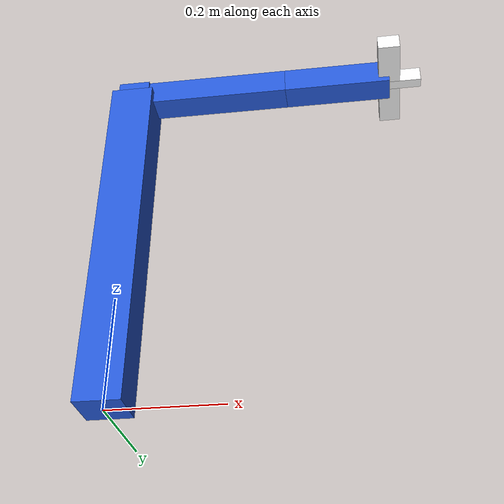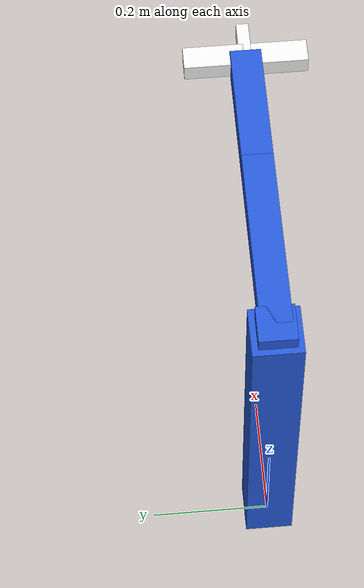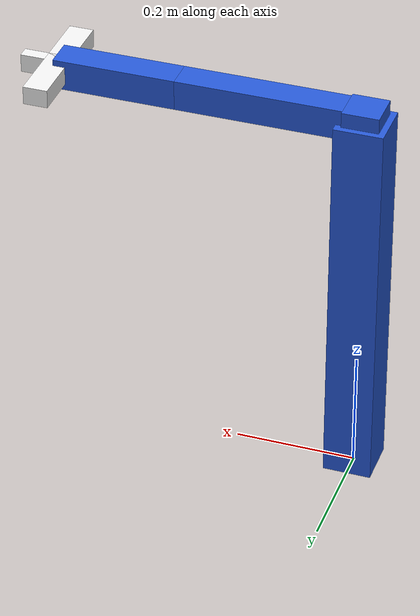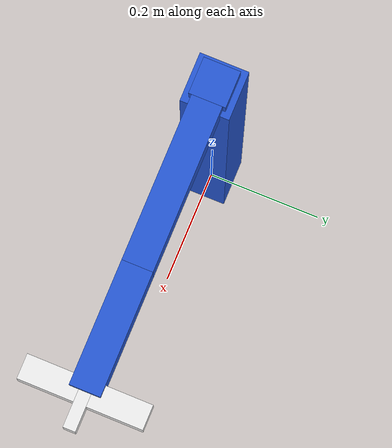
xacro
<?xml version="1.0"?>
<robot xmlns:xacro="http://www.ros.org/wiki/xacro" name="scara_arm_standalone">

  <xacro:include filename="$(find arm_description)/urdf/arm.xacro"/>

  <!-- goc the gioi de RViz co fixed frame -->
  <link name="arm_world"/>

  <!-- goi macro tay, gan vao arm_world (test rieng) -->
  <xacro:scara_arm parent="arm_world" xyz="0 0 0" rpy="0 0 0"/>

</robot>

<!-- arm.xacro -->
<robot xmlns:xacro="http://www.ros.org/wiki/xacro" name="scara_arm">

  <!-- ===== Thong so tay (so do that cua Duy) ===== -->
  <xacro:property name="arm_mount_z"  value="0.65"/>
  <xacro:property name="link1_len"    value="0.30"/>
  <xacro:property name="link2_len"    value="0.20"/>
  <xacro:property name="link_thick"   value="0.05"/>
  <xacro:property name="z_travel"     value="0.40"/>
  <xacro:property name="arm_mass"     value="0.5"/>
  <xacro:property name="grip_open"    value="0.20"/>
  <xacro:property name="finger_len"   value="0.06"/>
  <xacro:property name="finger_thick" value="0.02"/>

  <xacro:macro name="arm_box_inertia" params="m x y z">
    <inertial>
      <mass value="${m}"/>
      <inertia ixx="${(m/12.0)*(y*y+z*z)}" ixy="0.0" ixz="0.0"
               iyy="${(m/12.0)*(x*x+z*z)}" iyz="0.0"
               izz="${(m/12.0)*(x*x+y*y)}"/>
    </inertial>
  </xacro:macro>

  <material name="arm_blue"><color rgba="0.15 0.35 0.85 1.0"/></material>
  <material name="arm_white"><color rgba="0.95 0.95 0.95 1.0"/></material>

  <xacro:macro name="scara_arm" params="parent xyz:='0 0 0' rpy:='0 0 0'">

    <link name="arm_base_link">
      <visual>
        <origin xyz="0 0 ${arm_mount_z/2}" rpy="0 0 0"/>
        <geometry><box size="0.08 0.08 ${arm_mount_z}"/></geometry>
        <material name="arm_blue"/>
      </visual>
      <collision>
        <origin xyz="0 0 ${arm_mount_z/2}" rpy="0 0 0"/>
        <geometry><box size="0.08 0.08 ${arm_mount_z}"/></geometry>
      </collision>
      <xacro:arm_box_inertia m="${arm_mass}" x="0.08" y="0.08" z="${arm_mount_z}"/>
    </link>

    <joint name="arm_mount_joint" type="fixed">
      <parent link="${parent}"/>
      <child link="arm_base_link"/>
      <origin xyz="${xyz}" rpy="${rpy}"/>
    </joint>

    <link name="arm_z_link">
      <visual>
        <origin xyz="0 0 0" rpy="0 0 0"/>
        <geometry><box size="0.06 0.06 0.05"/></geometry>
        <material name="arm_blue"/>
      </visual>
      <xacro:arm_box_inertia m="0.2" x="0.06" y="0.06" z="0.05"/>
    </link>
    <joint name="J_z" type="prismatic">
      <parent link="arm_base_link"/>
      <child link="arm_z_link"/>
      <origin xyz="0 0 ${arm_mount_z}" rpy="0 0 0"/>
      <axis xyz="0 0 1"/>
      <limit lower="${-z_travel}" upper="0.0" effort="50.0" velocity="0.1"/>
    </joint>

    <link name="arm_link1">
      <visual>
        <origin xyz="${link1_len/2} 0 0" rpy="0 0 0"/>
        <geometry><box size="${link1_len} ${link_thick} ${link_thick}"/></geometry>
        <material name="arm_blue"/>
      </visual>
      <xacro:arm_box_inertia m="0.3" x="${link1_len}" y="${link_thick}" z="${link_thick}"/>
    </link>
    <joint name="J1" type="revolute">
      <parent link="arm_z_link"/>
      <child link="arm_link1"/>
      <origin xyz="0 0 0" rpy="0 0 0"/>
      <axis xyz="0 0 1"/>
      <limit lower="${-pi}" upper="${pi}" effort="10.0" velocity="2.0"/>
    </joint>

    <link name="arm_link2">
      <visual>
        <origin xyz="${link2_len/2} 0 0" rpy="0 0 0"/>
        <geometry><box size="${link2_len} ${link_thick} ${link_thick}"/></geometry>
        <material name="arm_blue"/>
      </visual>
      <xacro:arm_box_inertia m="0.2" x="${link2_len}" y="${link_thick}" z="${link_thick}"/>
    </link>
    <joint name="J2" type="revolute">
      <parent link="arm_link1"/>
      <child link="arm_link2"/>
      <origin xyz="${link1_len} 0 0" rpy="0 0 0"/>
      <axis xyz="0 0 1"/>
      <limit lower="${-pi}" upper="${pi}" effort="10.0" velocity="2.0"/>
    </joint>

    <link name="arm_gripper_base">
      <visual>
        <origin xyz="0 0 0" rpy="0 0 0"/>
        <geometry><box size="0.04 ${grip_open} 0.03"/></geometry>
        <material name="arm_white"/>
      </visual>
      <xacro:arm_box_inertia m="0.1" x="0.04" y="${grip_open}" z="0.03"/>
    </link>
    <joint name="J_grip_mount" type="fixed">
      <parent link="arm_link2"/>
      <child link="arm_gripper_base"/>
      <origin xyz="${link2_len} 0 0" rpy="0 0 0"/>
    </joint>

    <link name="arm_finger_left">
      <visual>
        <origin xyz="${finger_len/2} 0 0" rpy="0 0 0"/>
        <geometry><box size="${finger_len} ${finger_thick} 0.03"/></geometry>
        <material name="arm_white"/>
      </visual>
      <xacro:arm_box_inertia m="0.03" x="${finger_len}" y="${finger_thick}" z="0.03"/>
    </link>
    <joint name="J_grip" type="prismatic">
      <parent link="arm_gripper_base"/>
      <child link="arm_finger_left"/>
      <origin xyz="0 0 0" rpy="0 0 0"/>
      <axis xyz="0 1 0"/>
      <limit lower="0.0" upper="${grip_open/2}" effort="20.0" velocity="0.1"/>
    </joint>

    <link name="arm_finger_right">
      <visual>
        <origin xyz="${finger_len/2} 0 0" rpy="0 0 0"/>
        <geometry><box size="${finger_len} ${finger_thick} 0.03"/></geometry>
        <material name="arm_white"/>
      </visual>
      <xacro:arm_box_inertia m="0.03" x="${finger_len}" y="${finger_thick}" z="0.03"/>
    </link>
    <joint name="J_grip_mirror" type="prismatic">
      <parent link="arm_gripper_base"/>
      <child link="arm_finger_right"/>
      <origin xyz="0 0 0" rpy="0 0 0"/>
      <axis xyz="0 -1 0"/>
      <mimic joint="J_grip" multiplier="1.0" offset="0.0"/>
      <limit lower="0.0" upper="${grip_open/2}" effort="20.0" velocity="0.1"/>
    </joint>

  </xacro:macro>

</robot>
